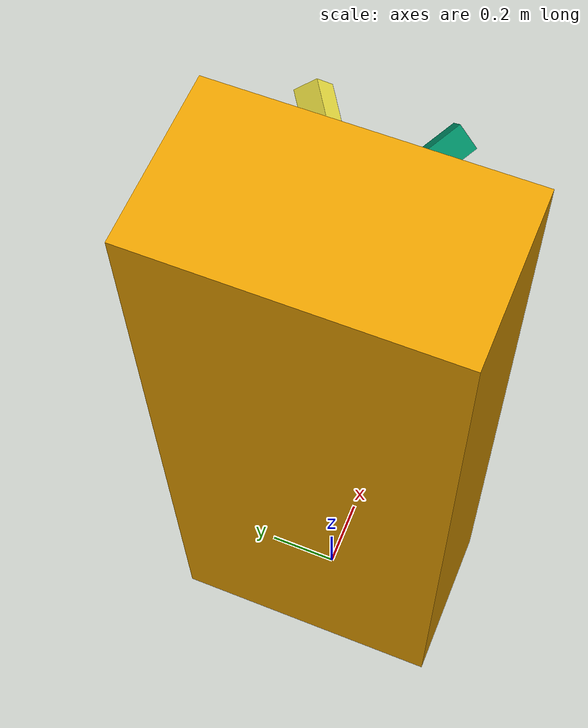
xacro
<?xml version="1.0"?>
<robot xmlns:xacro="http://www.ros.org/wiki/xacro" name="navvis">
  <link name="base">
    <visual>
      <origin xyz="0.0 0.0 0.96" rpy="0.0 0.0 0.0" />
      <geometry>
        <box size="0.45 0.78 1.92" />
      </geometry>
    </visual>
    <collision>
      <origin xyz="0.0 0.0 0.96" rpy="0.0 0.0 0.0" />
      <geometry>
        <box size="0.45 0.78 1.92" />
      </geometry>
    </collision>
  </link>
  <link name="laser_vert_bottom_joint">
    <visual>
      <origin xyz="0.0 0.0 0.0" rpy="0.0 0.0 0.0" />
      <geometry>
        <box size="0.062 0.062 0.087" />
      </geometry>
    </visual>
    <collision>
      <origin xyz="0.0 0.0 0.0" rpy="0.0 0.0 0.0" />
      <geometry>
        <box size="0.062 0.062 0.087" />
      </geometry>
    </collision>
  </link>
  <link name="laser_vert_top_right_joint">
    <visual>
      <origin xyz="0.0 0.0 0.0" rpy="0.0 0.0 0.0" />
      <geometry>
        <box size="0.062 0.062 0.087" />
      </geometry>
    </visual>
    <collision>
      <origin xyz="0.0 0.0 0.0" rpy="0.0 0.0 0.0" />
      <geometry>
        <box size="0.062 0.062 0.087" />
      </geometry>
    </collision>
  </link>
  <link name="laser_vert_top_left_joint">
    <visual>
      <origin xyz="0.0 0.0 0.0" rpy="0.0 0.0 0.0" />
      <geometry>
        <box size="0.062 0.062 0.087" />
      </geometry>
    </visual>
    <collision>
      <origin xyz="0.0 0.0 0.0" rpy="0.0 0.0 0.0" />
      <geometry>
        <box size="0.062 0.062 0.087" />
      </geometry>
    </collision>
  </link>
  <xacro:macro name="xacro_left_wheel" params="side reflect">
    <xacro:xacro_left_wheel side="left" reflect="1" />
    <link name="wheel_left">
      <visual>
        <origin xyz="0.0 0.0 0.0" rpy="0.0 0.0 0.0" />
        <geometry>
          <cylinder size="0.2 0.05" />
        </geometry>
      </visual>
      <collision>
        <origin xyz="0.0 0.0 0.0" rpy="0.0 0.0 0.0" />
        <geometry>
          <cylinder size="0.2 0.05" />
        </geometry>
      </collision>
    </link>
  </xacro:macro>
  <xacro:macro name="xacro_right_wheel" params="side reflect">
    <xacro:xacro_right_wheel side="right" reflect="-1" />
    <link name="wheel_right">
      <visual>
        <origin xyz="0.0 0.0 0.0" rpy="0.0 0.0 0.0" />
        <geometry>
          <cylinder size="0.2 0.05" />
        </geometry>
      </visual>
      <collision>
        <origin xyz="0.0 0.0 0.0" rpy="0.0 0.0 0.0" />
        <geometry>
          <cylinder size="0.2 0.05" />
        </geometry>
      </collision>
    </link>
  </xacro:macro>
  <xacro:macro name="xacro_center_wheel" params="side reflect">
    <link name="wheel_center">
      <visual>
        <origin xyz="0.0 0.0 0.0" rpy="0.0 0.0 0.0" />
        <geometry>
          <cylinder size="0.15 0.05" />
        </geometry>
      </visual>
      <collision>
        <origin xyz="0.0 0.0 0.0" rpy="0.0 0.0 0.0" />
        <geometry>
          <cylinder size="0.15 0.05" />
        </geometry>
      </collision>
    </link>
  </xacro:macro>
  <joint name="base_laser_vert_bottom_joint" type="fixed">
    <parent link="base" />
    <child link="laser_vert_bottom_joint" />
    <origin xyz="0.3158 -0.0021 0.5100" rpy="3.1355 -1.3045 0.0025" />
  </joint>
  <joint name="base_laser_vert_top_right_joint" type="fixed">
    <parent link="base" />
    <child link="laser_vert_top_right_joint" />
    <origin xyz="0.2978 -0.1450 1.8451" rpy="-1.1760 0.6313 -1.9377" />
  </joint>
  <joint name="base_laser_vert_top_left_joint" type="fixed">
    <parent link="base" />
    <child link="laser_vert_top_left_joint" />
    <origin xyz="0.2997 0.1531 1.8443" rpy="1.1780 0.6198 1.9560" />
  </joint>
  <xacro:macro name="xacro_left_wheel_joint" params="side reflect">
    <xacro:xacro_left_wheel side="left" reflect="1" />
    <joint name="wheel_left_joint" type="fixed">
      <parent link="base" />
      <child link="wheel_left" />
      <origin xyz="-0.10 -0.40 0.0" rpy="-1.5707 0.0 0.0" />
    </joint>
  </xacro:macro>
  <xacro:macro name="xacro_right_wheel_joint" params="side reflect">
    <xacro:xacro_right_wheel side="right" reflect="-1" />
    <joint name="wheel_right_joint" type="fixed">
      <parent link="base" />
      <child link="wheel_right" />
      <origin xyz="-0.10 0.40 0.0" rpy="-1.5707 0.0 0.0" />
    </joint>
  </xacro:macro>
  <xacro:macro name="xacro_center_wheel_joint" params="side reflect">
    <joint name="wheel_center_joint" type="fixed">
      <parent link="base" />
      <child link="wheel_center" />
      <origin xyz="0.10 0.0 0.0" rpy="-1.5707 0.0 0.0" />
    </joint>
  </xacro:macro>
</robot>
